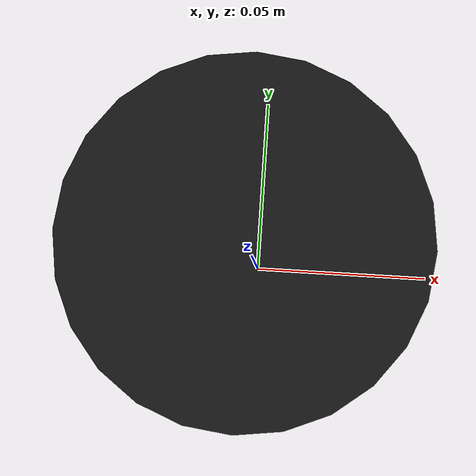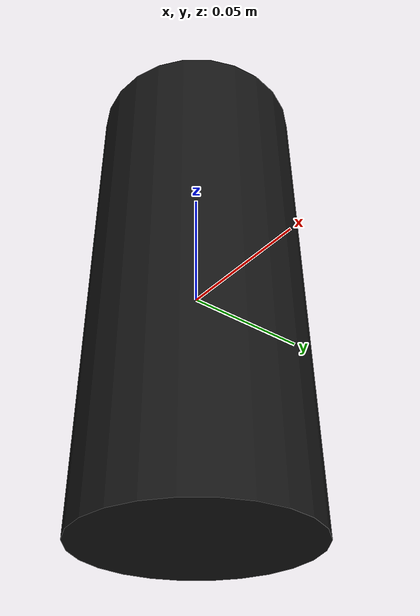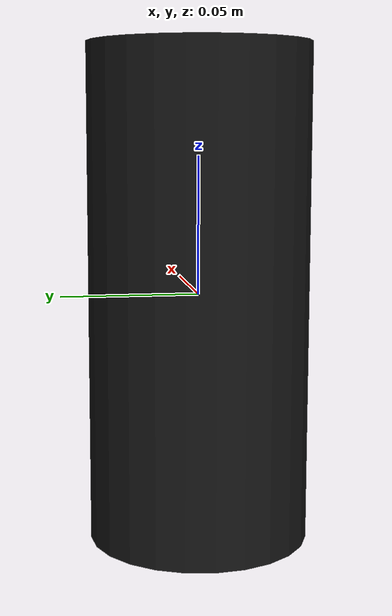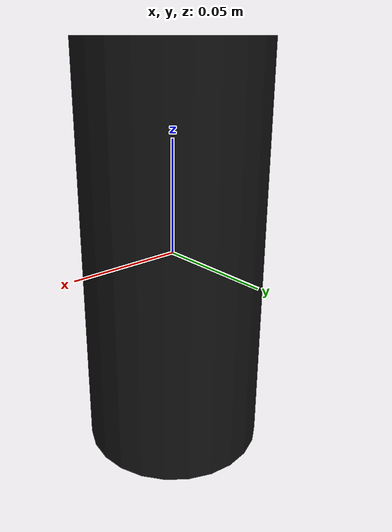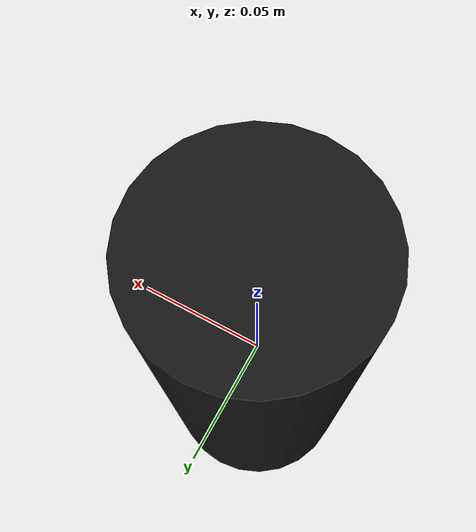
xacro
<?xml version="1.0"?>
<robot xmlns:xacro="http://www.ros.org/wiki/xacro" name="pp_cylinder_obstacle">
  <xacro:arg name="radius" default="0.04"/>
  <xacro:arg name="height" default="0.18"/>
  <xacro:arg name="color_rgba" default="0.08 0.08 0.08 1"/>

  <link name="base_link">
    <visual>
      <geometry>
        <cylinder radius="$(arg radius)" length="$(arg height)"/>
      </geometry>
      <material name="dark_gray">
        <color rgba="$(arg color_rgba)"/>
      </material>
    </visual>

    <collision>
      <geometry>
        <cylinder radius="$(arg radius)" length="$(arg height)"/>
      </geometry>
    </collision>

    <inertial>
      <mass value="2.0"/>
      <inertia ixx="0.01" ixy="0.0" ixz="0.0" iyy="0.01" iyz="0.0" izz="0.01"/>
    </inertial>
  </link>

  <gazebo>
    <static>true</static>
  </gazebo>
</robot>
